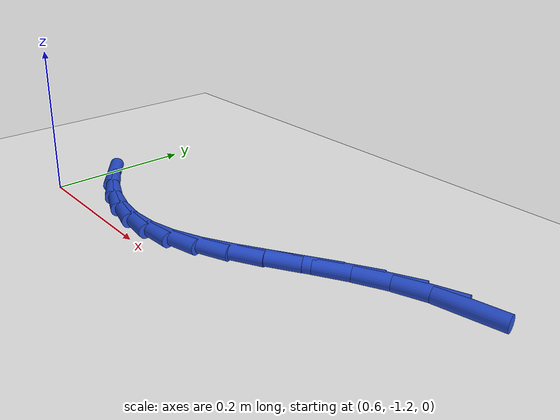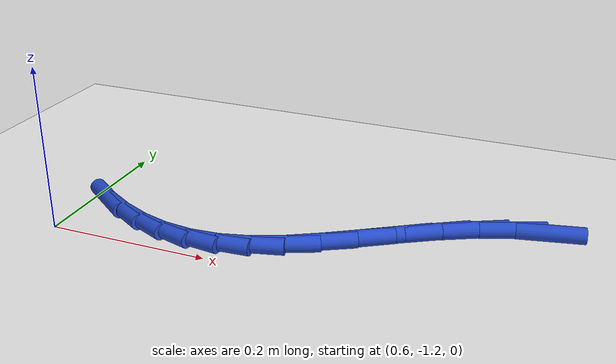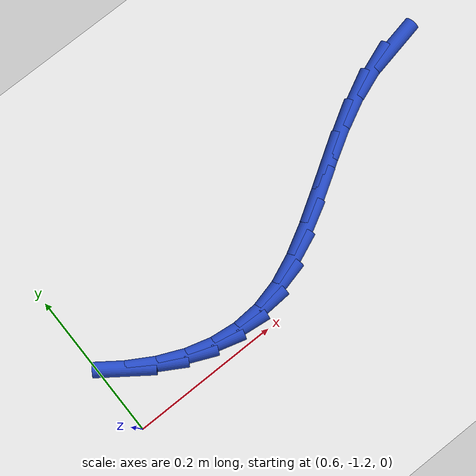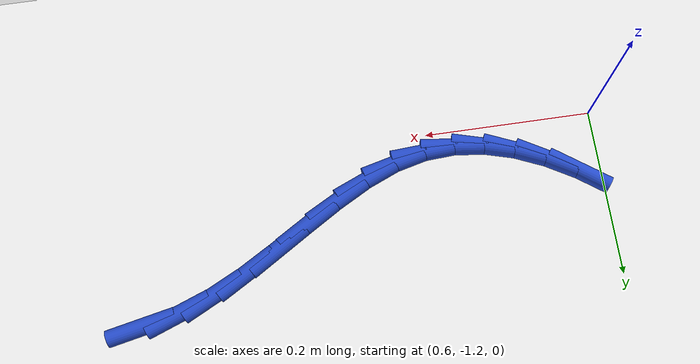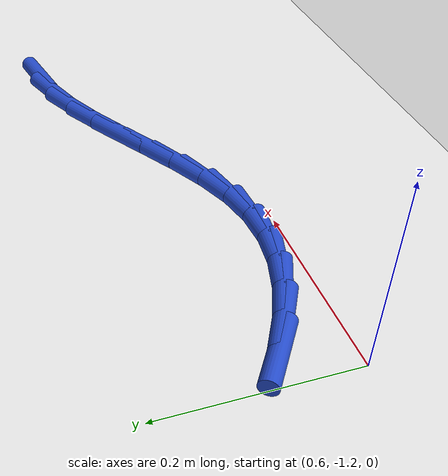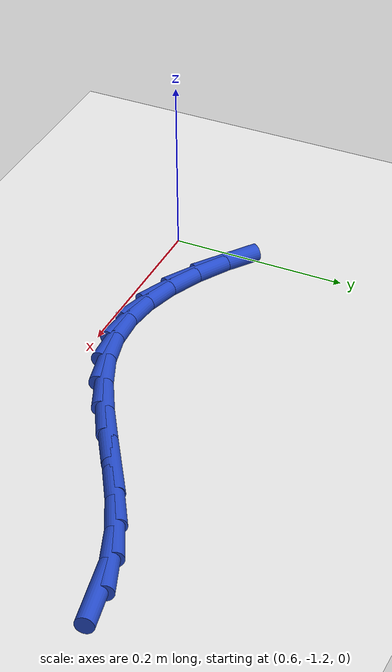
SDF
<sdf version="1.6">
 <world name="default">
  <model name="ground_plane">
   <static>1</static>
   <link name="link">
    <collision name="collision">
     <geometry><plane><normal>0 0 1</normal><size>100 100</size></plane></geometry>
     <surface><friction><ode><mu>100</mu><mu2>50</mu2></ode></friction></surface>
    </collision>
    <visual name="visual">
     <cast_shadows>0</cast_shadows>
     <geometry><plane><normal>0 0 1</normal><size>100 100</size></plane></geometry>
     <material>
      <script><uri>file://media/materials/scripts/gazebo.material</uri><name>Gazebo/WhiteGlow</name></script>
     </material>
    </visual>
   </link>
  </model>
  <model name="line">
   <link name="link_137">
    <pose>1.1546868965329298 -1.0157046393125915 0.01 0 1.57 0.20348824987113845</pose>
    <collision name="collision">
     <geometry><cylinder><radius>0.01</radius><length>0.08</length></cylinder></geometry>
    </collision>
    <visual name="visual">
     <material>
      <script><name>Gazebo/Blue</name><uri>file://media/materials/scripts/gazebo.material</uri></script>
     </material>
     <geometry><cylinder><radius>0.01</radius><length>0.08</length></cylinder></geometry>
    </visual>
   </link>
   <link name="link_138">
    <pose>1.112553907224546 -1.0243985375707085 0.01 0 1.57 0.3601907374875386</pose>
    <collision name="collision">
     <geometry><cylinder><radius>0.01</radius><length>0.08</length></cylinder></geometry>
    </collision>
    <visual name="visual">
     <material>
      <script><name>Gazebo/Blue</name><uri>file://media/materials/scripts/gazebo.material</uri></script>
     </material>
     <geometry><cylinder><radius>0.01</radius><length>0.08</length></cylinder></geometry>
    </visual>
   </link>
   <link name="link_139">
    <pose>1.0715543512787942 -1.0398398160903686 0.01 0 1.57 0.4690679496773634</pose>
    <collision name="collision">
     <geometry><cylinder><radius>0.01</radius><length>0.08</length></cylinder></geometry>
    </collision>
    <visual name="visual">
     <material>
      <script><name>Gazebo/Blue</name><uri>file://media/materials/scripts/gazebo.material</uri></script>
     </material>
     <geometry><cylinder><radius>0.01</radius><length>0.08</length></cylinder></geometry>
    </visual>
   </link>
   <link name="link_140">
    <pose>1.0315674050395371 -1.0601049567248217 0.01 0 1.57 0.5349168757054185</pose>
    <collision name="collision">
     <geometry><cylinder><radius>0.01</radius><length>0.08</length></cylinder></geometry>
    </collision>
    <visual name="visual">
     <material>
      <script><name>Gazebo/Blue</name><uri>file://media/materials/scripts/gazebo.material</uri></script>
     </material>
     <geometry><cylinder><radius>0.01</radius><length>0.08</length></cylinder></geometry>
    </visual>
   </link>
   <link name="link_141">
    <pose>0.9924722448506373 -1.0832704413273155 0.01 0 1.57 0.5621506137367575</pose>
    <collision name="collision">
     <geometry><cylinder><radius>0.01</radius><length>0.08</length></cylinder></geometry>
    </collision>
    <visual name="visual">
     <material>
      <script><name>Gazebo/Blue</name><uri>file://media/materials/scripts/gazebo.material</uri></script>
     </material>
     <geometry><cylinder><radius>0.01</radius><length>0.08</length></cylinder></geometry>
    </visual>
   </link>
   <link name="link_142">
    <pose>0.9541480470559567 -1.107412751751101 0.01 0 1.57 0.5518779303213867</pose>
    <collision name="collision">
     <geometry><cylinder><radius>0.01</radius><length>0.08</length></cylinder></geometry>
    </collision>
    <visual name="visual">
     <material>
      <script><name>Gazebo/Blue</name><uri>file://media/materials/scripts/gazebo.material</uri></script>
     </material>
     <geometry><cylinder><radius>0.01</radius><length>0.08</length></cylinder></geometry>
    </visual>
   </link>
   <link name="link_143">
    <pose>0.9164739879993602 -1.1306083698494254 0.01 0 1.57 0.5006868909593177</pose>
    <collision name="collision">
     <geometry><cylinder><radius>0.01</radius><length>0.08</length></cylinder></geometry>
    </collision>
    <visual name="visual">
     <material>
      <script><name>Gazebo/Blue</name><uri>file://media/materials/scripts/gazebo.material</uri></script>
     </material>
     <geometry><cylinder><radius>0.01</radius><length>0.08</length></cylinder></geometry>
    </visual>
   </link>
   <link name="link_144">
    <pose>0.879329244024709 -1.1509337774755388 0.01 0 1.57 0.3999963177477569</pose>
    <collision name="collision">
     <geometry><cylinder><radius>0.01</radius><length>0.08</length></cylinder></geometry>
    </collision>
    <visual name="visual">
     <material>
      <script><name>Gazebo/Blue</name><uri>file://media/materials/scripts/gazebo.material</uri></script>
     </material>
     <geometry><cylinder><radius>0.01</radius><length>0.08</length></cylinder></geometry>
    </visual>
   </link>
   <link name="link_145">
    <pose>0.8425929914758664 -1.16646545648269 0.01 0 1.57 0.24186157840503394</pose>
    <collision name="collision">
     <geometry><cylinder><radius>0.01</radius><length>0.08</length></cylinder></geometry>
    </collision>
    <visual name="visual">
     <material>
      <script><name>Gazebo/Blue</name><uri>file://media/materials/scripts/gazebo.material</uri></script>
     </material>
     <geometry><cylinder><radius>0.01</radius><length>0.08</length></cylinder></geometry>
    </visual>
   </link>
   <link name="link_146">
    <pose>0.8061554807344292 -1.1754542502615366 0.01 0 1.57 0.0600854106731669</pose>
    <collision name="collision">
     <geometry><cylinder><radius>0.01</radius><length>0.08</length></cylinder></geometry>
    </collision>
    <visual name="visual">
     <material>
      <script><name>Gazebo/Blue</name><uri>file://media/materials/scripts/gazebo.material</uri></script>
     </material>
     <geometry><cylinder><radius>0.01</radius><length>0.08</length></cylinder></geometry>
    </visual>
   </link>
   <link name="link_147">
    <pose>0.770000847554697 -1.177629234290863 0.01 0 1.57 -0.11569056870551513</pose>
    <collision name="collision">
     <geometry><cylinder><radius>0.01</radius><length>0.08</length></cylinder></geometry>
    </collision>
    <visual name="visual">
     <material>
      <script><name>Gazebo/Blue</name><uri>file://media/materials/scripts/gazebo.material</uri></script>
     </material>
     <geometry><cylinder><radius>0.01</radius><length>0.08</length></cylinder></geometry>
    </visual>
   </link>
   <link name="link_148">
    <pose>0.7341605291538511 -1.1734642490563736 0.01 0 1.57 -0.27528155688643385</pose>
    <collision name="collision">
     <geometry><cylinder><radius>0.01</radius><length>0.08</length></cylinder></geometry>
    </collision>
    <visual name="visual">
     <material>
      <script><name>Gazebo/Blue</name><uri>file://media/materials/scripts/gazebo.material</uri></script>
     </material>
     <geometry><cylinder><radius>0.01</radius><length>0.08</length></cylinder></geometry>
    </visual>
   </link>
   <link name="link_149">
    <pose>0.6986663236884993 -1.1634388180615123 0.01 0 1.57 -0.4134371488589972</pose>
    <collision name="collision">
     <geometry><cylinder><radius>0.01</radius><length>0.08</length></cylinder></geometry>
    </collision>
    <visual name="visual">
     <material>
      <script><name>Gazebo/Blue</name><uri>file://media/materials/scripts/gazebo.material</uri></script>
     </material>
     <geometry><cylinder><radius>0.01</radius><length>0.08</length></cylinder></geometry>
    </visual>
   </link>
   <link name="link_150">
    <pose>0.6635500293152476 -1.1480324648097238 0.01 0 1.57 -0.5294115111573013</pose>
    <collision name="collision">
     <geometry><cylinder><radius>0.01</radius><length>0.08</length></cylinder></geometry>
    </collision>
    <visual name="visual">
     <material>
      <script><name>Gazebo/Blue</name><uri>file://media/materials/scripts/gazebo.material</uri></script>
     </material>
     <geometry><cylinder><radius>0.01</radius><length>0.08</length></cylinder></geometry>
    </visual>
   </link>
   <link name="link_151">
    <pose>0.6288434441907024 -1.1277247128044514 0.01 0 1.57 -0.6251517414823613</pose>
    <collision name="collision">
     <geometry><cylinder><radius>0.01</radius><length>0.08</length></cylinder></geometry>
    </collision>
    <visual name="visual">
     <material>
      <script><name>Gazebo/Blue</name><uri>file://media/materials/scripts/gazebo.material</uri></script>
     </material>
     <geometry><cylinder><radius>0.01</radius><length>0.08</length></cylinder></geometry>
    </visual>
   </link>
  </model>
 </world>
</sdf>
